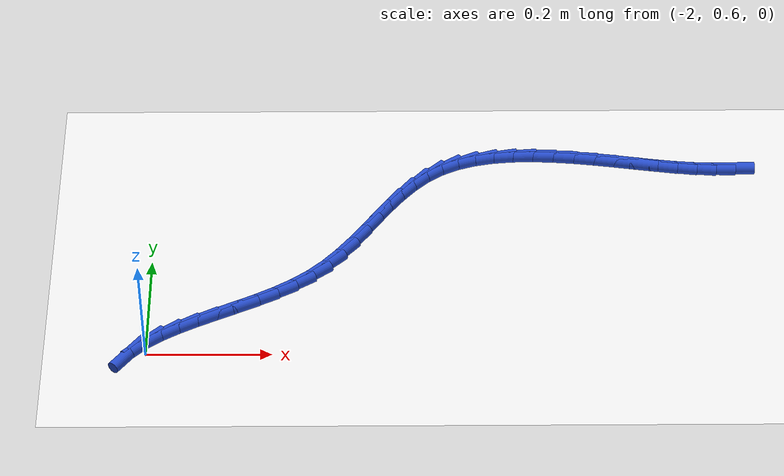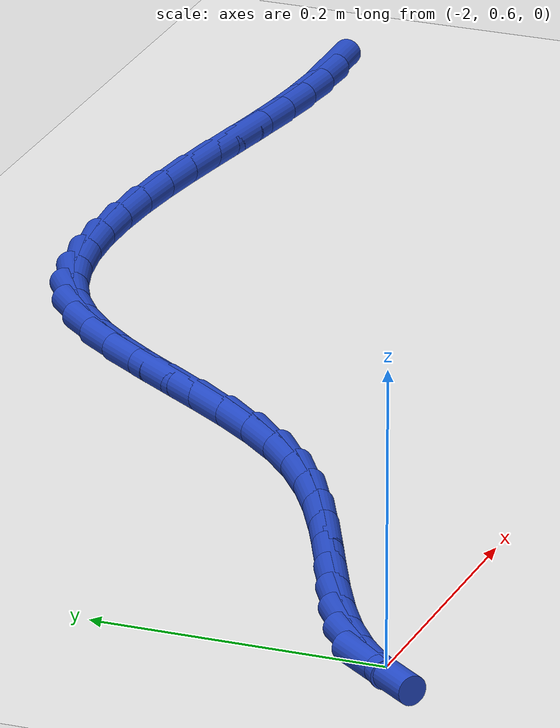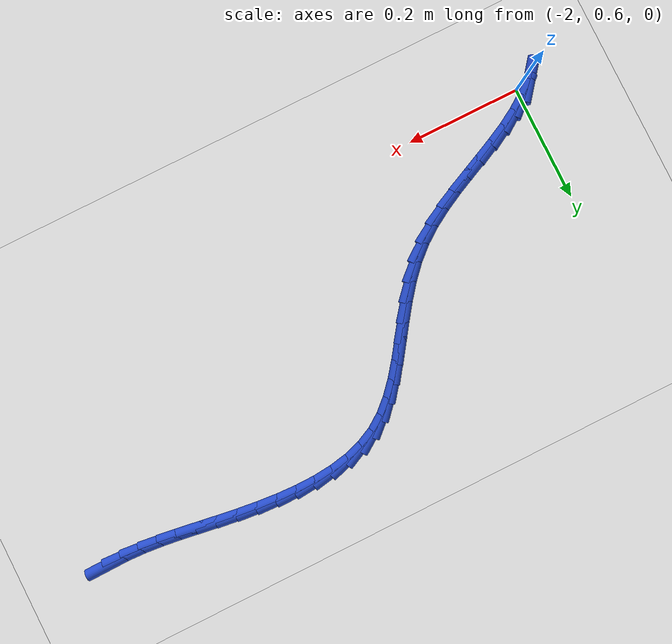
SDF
<sdf version="1.6">
 <world name="default">
  <model name="ground_plane">
   <static>1</static>
   <link name="link">
    <collision name="collision">
     <geometry><plane><normal>0 0 1</normal><size>100 100</size></plane></geometry>
     <surface><friction><ode><mu>100</mu><mu2>50</mu2></ode></friction></surface>
    </collision>
    <visual name="visual">
     <cast_shadows>0</cast_shadows>
     <geometry><plane><normal>0 0 1</normal><size>100 100</size></plane></geometry>
     <material>
      <script><uri>file://media/materials/scripts/gazebo.material</uri><name>Gazebo/WhiteGlow</name></script>
     </material>
    </visual>
   </link>
  </model>
  <model name="line">
   <link name="link_52">
    <pose>-1.0497106885198249 1.0006096725471751 0.01 0 1.57 0.018820083207032594</pose>
    <collision name="collision">
     <geometry><cylinder><radius>0.01</radius><length>0.08</length></cylinder></geometry>
    </collision>
    <visual name="visual">
     <material>
      <script><name>Gazebo/Blue</name><uri>file://media/materials/scripts/gazebo.material</uri></script>
     </material>
     <geometry><cylinder><radius>0.01</radius><length>0.08</length></cylinder></geometry>
    </visual>
   </link>
   <link name="link_53">
    <pose>-1.0810278757135687 1.0000202108818392 0.01 0 1.57 -0.04529241357038745</pose>
    <collision name="collision">
     <geometry><cylinder><radius>0.01</radius><length>0.08</length></cylinder></geometry>
    </collision>
    <visual name="visual">
     <material>
      <script><name>Gazebo/Blue</name><uri>file://media/materials/scripts/gazebo.material</uri></script>
     </material>
     <geometry><cylinder><radius>0.01</radius><length>0.08</length></cylinder></geometry>
    </visual>
   </link>
   <link name="link_54">
    <pose>-1.1124169357157976 1.001442870117793 0.01 0 1.57 -0.09440181729419449</pose>
    <collision name="collision">
     <geometry><cylinder><radius>0.01</radius><length>0.08</length></cylinder></geometry>
    </collision>
    <visual name="visual">
     <material>
      <script><name>Gazebo/Blue</name><uri>file://media/materials/scripts/gazebo.material</uri></script>
     </material>
     <geometry><cylinder><radius>0.01</radius><length>0.08</length></cylinder></geometry>
    </visual>
   </link>
   <link name="link_55">
    <pose>-1.1439946562457157 1.004432751247332 0.01 0 1.57 -0.12826913814941981</pose>
    <collision name="collision">
     <geometry><cylinder><radius>0.01</radius><length>0.08</length></cylinder></geometry>
    </collision>
    <visual name="visual">
     <material>
      <script><name>Gazebo/Blue</name><uri>file://media/materials/scripts/gazebo.material</uri></script>
     </material>
     <geometry><cylinder><radius>0.01</radius><length>0.08</length></cylinder></geometry>
    </visual>
   </link>
   <link name="link_56">
    <pose>-1.1758778250225268 1.008544955262752 0.01 0 1.57 -0.1471886691255853</pose>
    <collision name="collision">
     <geometry><cylinder><radius>0.01</radius><length>0.08</length></cylinder></geometry>
    </collision>
    <visual name="visual">
     <material>
      <script><name>Gazebo/Blue</name><uri>file://media/materials/scripts/gazebo.material</uri></script>
     </material>
     <geometry><cylinder><radius>0.01</radius><length>0.08</length></cylinder></geometry>
    </visual>
   </link>
   <link name="link_57">
    <pose>-1.2081832297654334 1.0133345831563483 0.01 0 1.57 -0.15173204980139357</pose>
    <collision name="collision">
     <geometry><cylinder><radius>0.01</radius><length>0.08</length></cylinder></geometry>
    </collision>
    <visual name="visual">
     <material>
      <script><name>Gazebo/Blue</name><uri>file://media/materials/scripts/gazebo.material</uri></script>
     </material>
     <geometry><cylinder><radius>0.01</radius><length>0.08</length></cylinder></geometry>
    </visual>
   </link>
   <link name="link_58">
    <pose>-1.2410276581936395 1.0183567359204178 0.01 0 1.57 -0.1426028126251293</pose>
    <collision name="collision">
     <geometry><cylinder><radius>0.01</radius><length>0.08</length></cylinder></geometry>
    </collision>
    <visual name="visual">
     <material>
      <script><name>Gazebo/Blue</name><uri>file://media/materials/scripts/gazebo.material</uri></script>
     </material>
     <geometry><cylinder><radius>0.01</radius><length>0.08</length></cylinder></geometry>
    </visual>
   </link>
   <link name="link_59">
    <pose>-1.274527210241311 1.0231665137286856 0.01 0 1.57 -0.12110197321760002</pose>
    <collision name="collision">
     <geometry><cylinder><radius>0.01</radius><length>0.08</length></cylinder></geometry>
    </collision>
    <visual name="visual">
     <material>
      <script><name>Gazebo/Blue</name><uri>file://media/materials/scripts/gazebo.material</uri></script>
     </material>
     <geometry><cylinder><radius>0.01</radius><length>0.08</length></cylinder></geometry>
    </visual>
   </link>
   <link name="link_60">
    <pose>-1.3086472559877511 1.0273188373632838 0.01 0 1.57 -0.08849791112264868</pose>
    <collision name="collision">
     <geometry><cylinder><radius>0.01</radius><length>0.08</length></cylinder></geometry>
    </collision>
    <visual name="visual">
     <material>
      <script><name>Gazebo/Blue</name><uri>file://media/materials/scripts/gazebo.material</uri></script>
     </material>
     <geometry><cylinder><radius>0.01</radius><length>0.08</length></cylinder></geometry>
    </visual>
   </link>
   <link name="link_61">
    <pose>-1.343014418701242 1.0303682244457963 0.01 0 1.57 -0.04386501316778979</pose>
    <collision name="collision">
     <geometry><cylinder><radius>0.01</radius><length>0.08</length></cylinder></geometry>
    </collision>
    <visual name="visual">
     <material>
      <script><name>Gazebo/Blue</name><uri>file://media/materials/scripts/gazebo.material</uri></script>
     </material>
     <geometry><cylinder><radius>0.01</radius><length>0.08</length></cylinder></geometry>
    </visual>
   </link>
   <link name="link_62">
    <pose>-1.3772091050817554 1.0318691375930185 0.01 0 1.57 0.014673344796306026</pose>
    <collision name="collision">
     <geometry><cylinder><radius>0.01</radius><length>0.08</length></cylinder></geometry>
    </collision>
    <visual name="visual">
     <material>
      <script><name>Gazebo/Blue</name><uri>file://media/materials/scripts/gazebo.material</uri></script>
     </material>
     <geometry><cylinder><radius>0.01</radius><length>0.08</length></cylinder></geometry>
    </visual>
   </link>
   <link name="link_63">
    <pose>-1.4108117218292626 1.0313760394217457 0.01 0 1.57 0.08974176962137523</pose>
    <collision name="collision">
     <geometry><cylinder><radius>0.01</radius><length>0.08</length></cylinder></geometry>
    </collision>
    <visual name="visual">
     <material>
      <script><name>Gazebo/Blue</name><uri>file://media/materials/scripts/gazebo.material</uri></script>
     </material>
     <geometry><cylinder><radius>0.01</radius><length>0.08</length></cylinder></geometry>
    </visual>
   </link>
   <link name="link_64">
    <pose>-1.443402675643733 1.0284433925487728 0.01 0 1.57 0.184581750508797</pose>
    <collision name="collision">
     <geometry><cylinder><radius>0.01</radius><length>0.08</length></cylinder></geometry>
    </collision>
    <visual name="visual">
     <material>
      <script><name>Gazebo/Blue</name><uri>file://media/materials/scripts/gazebo.material</uri></script>
     </material>
     <geometry><cylinder><radius>0.01</radius><length>0.08</length></cylinder></geometry>
    </visual>
   </link>
   <link name="link_65">
    <pose>-1.4745623732251385 1.022625659590895 0.01 0 1.57 0.30255352402661145</pose>
    <collision name="collision">
     <geometry><cylinder><radius>0.01</radius><length>0.08</length></cylinder></geometry>
    </collision>
    <visual name="visual">
     <material>
      <script><name>Gazebo/Blue</name><uri>file://media/materials/scripts/gazebo.material</uri></script>
     </material>
     <geometry><cylinder><radius>0.01</radius><length>0.08</length></cylinder></geometry>
    </visual>
   </link>
   <link name="link_66">
    <pose>-1.5038712212734502 1.0134773031649074 0.01 0 1.57 0.44589802409268076</pose>
    <collision name="collision">
     <geometry><cylinder><radius>0.01</radius><length>0.08</length></cylinder></geometry>
    </collision>
    <visual name="visual">
     <material>
      <script><name>Gazebo/Blue</name><uri>file://media/materials/scripts/gazebo.material</uri></script>
     </material>
     <geometry><cylinder><radius>0.01</radius><length>0.08</length></cylinder></geometry>
    </visual>
   </link>
   <link name="link_67">
    <pose>-1.5309096264886382 1.0005527858876053 0.01 0 1.57 0.6062277638426319</pose>
    <collision name="collision">
     <geometry><cylinder><radius>0.01</radius><length>0.08</length></cylinder></geometry>
    </collision>
    <visual name="visual">
     <material>
      <script><name>Gazebo/Blue</name><uri>file://media/materials/scripts/gazebo.material</uri></script>
     </material>
     <geometry><cylinder><radius>0.01</radius><length>0.08</length></cylinder></geometry>
    </visual>
   </link>
   <link name="link_68">
    <pose>-1.5553970211584858 0.9835752178882324 0.01 0 1.57 0.7438565325337056</pose>
    <collision name="collision">
     <geometry><cylinder><radius>0.01</radius><length>0.08</length></cylinder></geometry>
    </collision>
    <visual name="visual">
     <material>
      <script><name>Gazebo/Blue</name><uri>file://media/materials/scripts/gazebo.material</uri></script>
     </material>
     <geometry><cylinder><radius>0.01</radius><length>0.08</length></cylinder></geometry>
    </visual>
   </link>
   <link name="link_69">
    <pose>-1.5776997930257932 0.9630525103522313 0.01 0 1.57 0.845756059356857</pose>
    <collision name="collision">
     <geometry><cylinder><radius>0.01</radius><length>0.08</length></cylinder></geometry>
    </collision>
    <visual name="visual">
     <material>
      <script><name>Gazebo/Blue</name><uri>file://media/materials/scripts/gazebo.material</uri></script>
     </material>
     <geometry><cylinder><radius>0.01</radius><length>0.08</length></cylinder></geometry>
    </visual>
   </link>
   <link name="link_70">
    <pose>-1.5983723744893645 0.9397206854478043 0.01 0 1.57 0.9137514388473308</pose>
    <collision name="collision">
     <geometry><cylinder><radius>0.01</radius><length>0.08</length></cylinder></geometry>
    </collision>
    <visual name="visual">
     <material>
      <script><name>Gazebo/Blue</name><uri>file://media/materials/scripts/gazebo.material</uri></script>
     </material>
     <geometry><cylinder><radius>0.01</radius><length>0.08</length></cylinder></geometry>
    </visual>
   </link>
   <link name="link_71">
    <pose>-1.6179692186917336 0.9143157905067093 0.01 0 1.57 0.9511862110104743</pose>
    <collision name="collision">
     <geometry><cylinder><radius>0.01</radius><length>0.08</length></cylinder></geometry>
    </collision>
    <visual name="visual">
     <material>
      <script><name>Gazebo/Blue</name><uri>file://media/materials/scripts/gazebo.material</uri></script>
     </material>
     <geometry><cylinder><radius>0.01</radius><length>0.08</length></cylinder></geometry>
    </visual>
   </link>
   <link name="link_72">
    <pose>-1.6370447787754328 0.8875738728607042 0.01 0 1.57 0.9608389470240487</pose>
    <collision name="collision">
     <geometry><cylinder><radius>0.01</radius><length>0.08</length></cylinder></geometry>
    </collision>
    <visual name="visual">
     <material>
      <script><name>Gazebo/Blue</name><uri>file://media/materials/scripts/gazebo.material</uri></script>
     </material>
     <geometry><cylinder><radius>0.01</radius><length>0.08</length></cylinder></geometry>
    </visual>
   </link>
   <link name="link_73">
    <pose>-1.6561535078829963 0.8602309798415472 0.01 0 1.57 0.9441948260736722</pose>
    <collision name="collision">
     <geometry><cylinder><radius>0.01</radius><length>0.08</length></cylinder></geometry>
    </collision>
    <visual name="visual">
     <material>
      <script><name>Gazebo/Blue</name><uri>file://media/materials/scripts/gazebo.material</uri></script>
     </material>
     <geometry><cylinder><radius>0.01</radius><length>0.08</length></cylinder></geometry>
    </visual>
   </link>
   <link name="link_74">
    <pose>-1.6758498591569562 0.8330231587809963 0.01 0 1.57 0.901424981028827</pose>
    <collision name="collision">
     <geometry><cylinder><radius>0.01</radius><length>0.08</length></cylinder></geometry>
    </collision>
    <visual name="visual">
     <material>
      <script><name>Gazebo/Blue</name><uri>file://media/materials/scripts/gazebo.material</uri></script>
     </material>
     <geometry><cylinder><radius>0.01</radius><length>0.08</length></cylinder></geometry>
    </visual>
   </link>
   <link name="link_75">
    <pose>-1.6966882857398458 0.8066864570108097 0.01 0 1.57 0.8317967393286411</pose>
    <collision name="collision">
     <geometry><cylinder><radius>0.01</radius><length>0.08</length></cylinder></geometry>
    </collision>
    <visual name="visual">
     <material>
      <script><name>Gazebo/Blue</name><uri>file://media/materials/scripts/gazebo.material</uri></script>
     </material>
     <geometry><cylinder><radius>0.01</radius><length>0.08</length></cylinder></geometry>
    </visual>
   </link>
   <link name="link_76">
    <pose>-1.7192232407741992 0.7819569218627448 0.01 0 1.57 0.7347196133517839</pose>
    <collision name="collision">
     <geometry><cylinder><radius>0.01</radius><length>0.08</length></cylinder></geometry>
    </collision>
    <visual name="visual">
     <material>
      <script><name>Gazebo/Blue</name><uri>file://media/materials/scripts/gazebo.material</uri></script>
     </material>
     <geometry><cylinder><radius>0.01</radius><length>0.08</length></cylinder></geometry>
    </visual>
   </link>
   <link name="link_77">
    <pose>-1.7440058443919997 0.7595670020729831 0.01 0 1.57 0.6274326278237892</pose>
    <collision name="collision">
     <geometry><cylinder><radius>0.01</radius><length>0.08</length></cylinder></geometry>
    </collision>
    <visual name="visual">
     <material>
      <script><name>Gazebo/Blue</name><uri>file://media/materials/scripts/gazebo.material</uri></script>
     </material>
     <geometry><cylinder><radius>0.01</radius><length>0.08</length></cylinder></geometry>
    </visual>
   </link>
   <link name="link_78">
    <pose>-1.7712083115117827 0.7398400487748827 0.01 0 1.57 0.5424033164754786</pose>
    <collision name="collision">
     <geometry><cylinder><radius>0.01</radius><length>0.08</length></cylinder></geometry>
    </collision>
    <visual name="visual">
     <material>
      <script><name>Gazebo/Blue</name><uri>file://media/materials/scripts/gazebo.material</uri></script>
     </material>
     <geometry><cylinder><radius>0.01</radius><length>0.08</length></cylinder></geometry>
    </visual>
   </link>
   <link name="link_79">
    <pose>-1.8002797328271007 0.7223186680065107 0.01 0 1.57 0.48213312445192924</pose>
    <collision name="collision">
     <geometry><cylinder><radius>0.01</radius><length>0.08</length></cylinder></geometry>
    </collision>
    <visual name="visual">
     <material>
      <script><name>Gazebo/Blue</name><uri>file://media/materials/scripts/gazebo.material</uri></script>
     </material>
     <geometry><cylinder><radius>0.01</radius><length>0.08</length></cylinder></geometry>
    </visual>
   </link>
   <link name="link_80">
    <pose>-1.8305878710401966 0.7064576573379944 0.01 0 1.57 0.4450927085131241</pose>
    <collision name="collision">
     <geometry><cylinder><radius>0.01</radius><length>0.08</length></cylinder></geometry>
    </collision>
    <visual name="visual">
     <material>
      <script><name>Gazebo/Blue</name><uri>file://media/materials/scripts/gazebo.material</uri></script>
     </material>
     <geometry><cylinder><radius>0.01</radius><length>0.08</length></cylinder></geometry>
    </visual>
   </link>
   <link name="link_81">
    <pose>-1.8615004888533115 0.6917118143394604 0.01 0 1.57 0.43030577049690705</pose>
    <collision name="collision">
     <geometry><cylinder><radius>0.01</radius><length>0.08</length></cylinder></geometry>
    </collision>
    <visual name="visual">
     <material>
      <script><name>Gazebo/Blue</name><uri>file://media/materials/scripts/gazebo.material</uri></script>
     </material>
     <geometry><cylinder><radius>0.01</radius><length>0.08</length></cylinder></geometry>
    </visual>
   </link>
   <link name="link_82">
    <pose>-1.8923853489686877 0.6775359365810356 0.01 0 1.57 0.43788101467453755</pose>
    <collision name="collision">
     <geometry><cylinder><radius>0.01</radius><length>0.08</length></cylinder></geometry>
    </collision>
    <visual name="visual">
     <material>
      <script><name>Gazebo/Blue</name><uri>file://media/materials/scripts/gazebo.material</uri></script>
     </material>
     <geometry><cylinder><radius>0.01</radius><length>0.08</length></cylinder></geometry>
    </visual>
   </link>
   <link name="link_83">
    <pose>-1.9226102140885681 0.6633848216328474 0.01 0 1.57 0.4693064168493608</pose>
    <collision name="collision">
     <geometry><cylinder><radius>0.01</radius><length>0.08</length></cylinder></geometry>
    </collision>
    <visual name="visual">
     <material>
      <script><name>Gazebo/Blue</name><uri>file://media/materials/scripts/gazebo.material</uri></script>
     </material>
     <geometry><cylinder><radius>0.01</radius><length>0.08</length></cylinder></geometry>
    </visual>
   </link>
   <link name="link_84">
    <pose>-1.9515428469151939 0.6487132670650224 0.01 0 1.57 0.5275890617160434</pose>
    <collision name="collision">
     <geometry><cylinder><radius>0.01</radius><length>0.08</length></cylinder></geometry>
    </collision>
    <visual name="visual">
     <material>
      <script><name>Gazebo/Blue</name><uri>file://media/materials/scripts/gazebo.material</uri></script>
     </material>
     <geometry><cylinder><radius>0.01</radius><length>0.08</length></cylinder></geometry>
    </visual>
   </link>
   <link name="link_85">
    <pose>-1.978551010150808 0.6329760704476874 0.01 0 1.57 0.6170661202951366</pose>
    <collision name="collision">
     <geometry><cylinder><radius>0.01</radius><length>0.08</length></cylinder></geometry>
    </collision>
    <visual name="visual">
     <material>
      <script><name>Gazebo/Blue</name><uri>file://media/materials/scripts/gazebo.material</uri></script>
     </material>
     <geometry><cylinder><radius>0.01</radius><length>0.08</length></cylinder></geometry>
    </visual>
   </link>
   <link name="link_86">
    <pose>-2.0030024664976507 0.6156280293509695 0.01 0 1.57 0.7422909426515508</pose>
    <collision name="collision">
     <geometry><cylinder><radius>0.01</radius><length>0.08</length></cylinder></geometry>
    </collision>
    <visual name="visual">
     <material>
      <script><name>Gazebo/Blue</name><uri>file://media/materials/scripts/gazebo.material</uri></script>
     </material>
     <geometry><cylinder><radius>0.01</radius><length>0.08</length></cylinder></geometry>
    </visual>
   </link>
   <link name="link_87">
    <pose>-2.0242649786579663 0.5961239413449959 0.01 0 1.57 0.9042840648291731</pose>
    <collision name="collision">
     <geometry><cylinder><radius>0.01</radius><length>0.08</length></cylinder></geometry>
    </collision>
    <visual name="visual">
     <material>
      <script><name>Gazebo/Blue</name><uri>file://media/materials/scripts/gazebo.material</uri></script>
     </material>
     <geometry><cylinder><radius>0.01</radius><length>0.08</length></cylinder></geometry>
    </visual>
   </link>
  </model>
 </world>
</sdf>
